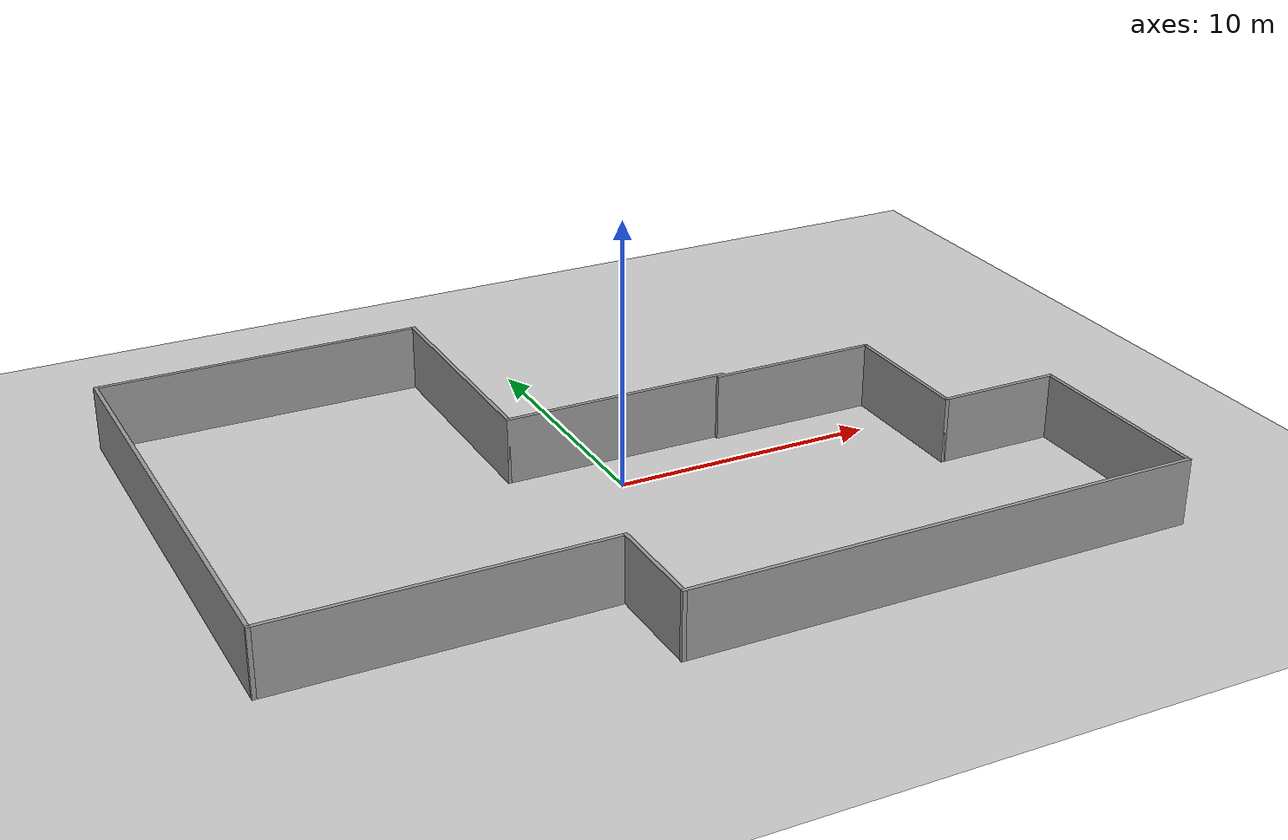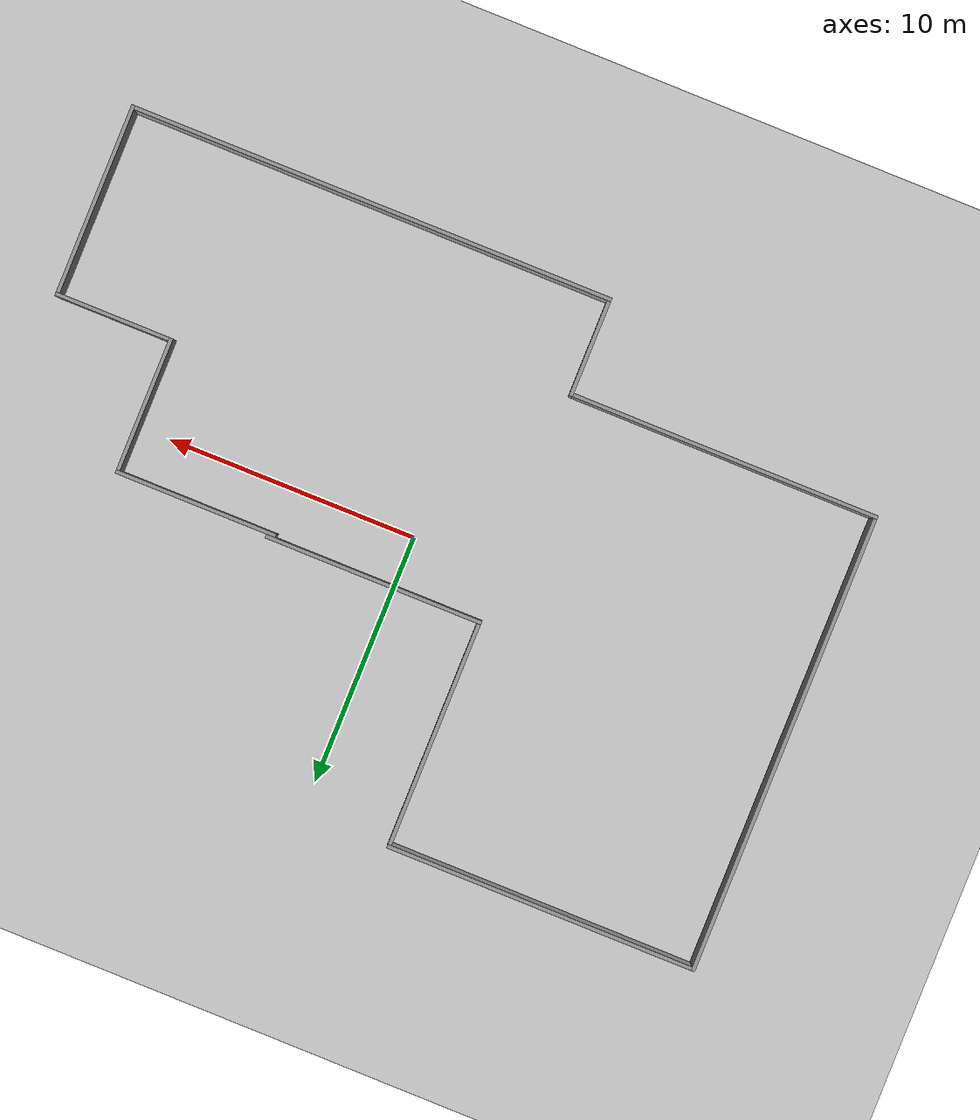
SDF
<?xml version="1.0" encoding="UTF-8"?>
<sdf version="1.4">
  <world name="default">
    <!-- *********************INITIAL POSE OF THE CAMERA***************************** -->
		<gui>
      <camera name="main_cam">
        <pose>1.15 -26 21 0 0.8 1.57</pose>
      </camera>
    </gui>

    <!-- *********************GROUND AND SUN***************************** -->
    <include>
      <uri>model://ground_plane</uri>
    </include>

    <include>
      <uri>model://sun</uri>
    </include>

    <!-- **********************WALLS**************************** -->
    <include>
      <uri>model://B3_env</uri>
      <name>walls</name>
      <pose>0 0 0 0 0 0</pose>
    </include>
  </world>
</sdf>

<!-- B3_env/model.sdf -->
<sdf version='1.6'>
  <model name='B3_env'>
    <pose frame=''>-7.64 -3.1 0 0 -0 0</pose>
    <link name='Wall_0'>
      <collision name='Wall_0_Collision'>
        <geometry>
          <box>
            <size>6.5 0.15 2.5</size>
          </box>
        </geometry>
        <pose frame=''>0 0 1.25 0 -0 0</pose>
      </collision>
      <visual name='Wall_0_Visual'>
        <pose frame=''>0 0 1.25 0 -0 0</pose>
        <geometry>
          <box>
            <size>6.5 0.15 2.5</size>
          </box>
        </geometry>
        <material>
          <script>
            <uri>file://media/materials/scripts/gazebo.material</uri>
            <name>Gazebo/Grey</name>
          </script>
          <ambient>1 1 1 1</ambient>
        </material>
        <meta>
          <layer>0</layer>
        </meta>
      </visual>
      <pose frame=''>8.075 1.85 0 0 -0 0</pose>
    </link>
    <link name='Wall_1'>
      <collision name='Wall_1_Collision'>
        <geometry>
          <box>
            <size>5.5 0.15 2.5</size>
          </box>
        </geometry>
        <pose frame=''>0 0 1.25 0 -0 0</pose>
      </collision>
      <visual name='Wall_1_Visual'>
        <pose frame=''>0 0 1.25 0 -0 0</pose>
        <geometry>
          <box>
            <size>5.5 0.15 2.5</size>
          </box>
        </geometry>
        <material>
          <script>
            <uri>file://media/materials/scripts/gazebo.material</uri>
            <name>Gazebo/Grey</name>
          </script>
          <ambient>1 1 1 1</ambient>
        </material>
        <meta>
          <layer>0</layer>
        </meta>
      </visual>
      <pose frame=''>11.25 -0.825001 0 0 -0 -1.5708</pose>
    </link>
    <link name='Wall_10'>
      <collision name='Wall_10_Collision'>
        <geometry>
          <box>
            <size>8.75 0.15 2.5</size>
          </box>
        </geometry>
        <pose frame=''>0 0 1.25 0 -0 0</pose>
      </collision>
      <visual name='Wall_10_Visual'>
        <pose frame=''>0 0 1.25 0 -0 0</pose>
        <geometry>
          <box>
            <size>8.75 0.15 2.5</size>
          </box>
        </geometry>
        <material>
          <script>
            <uri>file://media/materials/scripts/gazebo.material</uri>
            <name>Gazebo/Grey</name>
          </script>
          <ambient>1 1 1 1</ambient>
        </material>
        <meta>
          <layer>0</layer>
        </meta>
      </visual>
      <pose frame=''>0.8 2 0 0 -0 0</pose>
    </link>
    <link name='Wall_2'>
      <collision name='Wall_2_Collision'>
        <geometry>
          <box>
            <size>4.75 0.15 2.5</size>
          </box>
        </geometry>
        <pose frame=''>0 0 1.25 0 -0 0</pose>
      </collision>
      <visual name='Wall_2_Visual'>
        <pose frame=''>0 0 1.25 0 -0 0</pose>
        <geometry>
          <box>
            <size>4.75 0.15 2.5</size>
          </box>
        </geometry>
        <material>
          <script>
            <uri>file://media/materials/scripts/gazebo.material</uri>
            <name>Gazebo/Grey</name>
          </script>
          <ambient>1 1 1 1</ambient>
        </material>
        <meta>
          <layer>0</layer>
        </meta>
      </visual>
      <pose frame=''>13.55 -3.5 0 0 -0 0</pose>
    </link>
    <link name='Wall_3'>
      <collision name='Wall_3_Collision'>
        <geometry>
          <box>
            <size>7.75 0.15 2.5</size>
          </box>
        </geometry>
        <pose frame=''>0 0 1.25 0 -0 0</pose>
      </collision>
      <visual name='Wall_3_Visual'>
        <pose frame=''>0 0 1.25 0 -0 0</pose>
        <geometry>
          <box>
            <size>7.75 0.15 2.5</size>
          </box>
        </geometry>
        <material>
          <script>
            <uri>file://media/materials/scripts/gazebo.material</uri>
            <name>Gazebo/Grey</name>
          </script>
          <ambient>1 1 1 1</ambient>
        </material>
        <meta>
          <layer>0</layer>
        </meta>
      </visual>
      <pose frame=''>15.85 -7.3 0 0 -0 -1.5708</pose>
    </link>
    <link name='Wall_4'>
      <collision name='Wall_4_Collision'>
        <geometry>
          <box>
            <size>19.5 0.15 2.5</size>
          </box>
        </geometry>
        <pose frame=''>0 0 1.25 0 -0 0</pose>
      </collision>
      <visual name='Wall_4_Visual'>
        <pose frame=''>0 0 1.25 0 -0 0</pose>
        <geometry>
          <box>
            <size>19.5 0.15 2.5</size>
          </box>
        </geometry>
        <material>
          <script>
            <uri>file://media/materials/scripts/gazebo.material</uri>
            <name>Gazebo/Grey</name>
          </script>
          <ambient>1 1 1 1</ambient>
        </material>
        <meta>
          <layer>0</layer>
        </meta>
      </visual>
      <pose frame=''>6.175 -11.1 0 0 -0 3.14159</pose>
    </link>
    <link name='Wall_5'>
      <collision name='Wall_5_Collision'>
        <geometry>
          <box>
            <size>4 0.15 2.5</size>
          </box>
        </geometry>
        <pose frame=''>0 0 1.25 0 -0 0</pose>
      </collision>
      <visual name='Wall_5_Visual'>
        <pose frame=''>0 0 1.25 0 -0 0</pose>
        <geometry>
          <box>
            <size>4 0.15 2.5</size>
          </box>
        </geometry>
        <material>
          <script>
            <uri>file://media/materials/scripts/gazebo.material</uri>
            <name>Gazebo/Grey</name>
          </script>
          <ambient>1 1 1 1</ambient>
        </material>
        <meta>
          <layer>0</layer>
        </meta>
      </visual>
      <pose frame=''>-3.5 -9.175 0 0 -0 1.5708</pose>
    </link>
    <link name='Wall_6'>
      <collision name='Wall_6_Collision'>
        <geometry>
          <box>
            <size>12.5 0.15 2.5</size>
          </box>
        </geometry>
        <pose frame=''>0 0 1.25 0 -0 0</pose>
      </collision>
      <visual name='Wall_6_Visual'>
        <pose frame=''>0 0 1.25 0 -0 0</pose>
        <geometry>
          <box>
            <size>12.5 0.15 2.5</size>
          </box>
        </geometry>
        <material>
          <script>
            <uri>file://media/materials/scripts/gazebo.material</uri>
            <name>Gazebo/Grey</name>
          </script>
          <ambient>1 1 1 1</ambient>
        </material>
        <meta>
          <layer>0</layer>
        </meta>
      </visual>
      <pose frame=''>-9.675 -7.25 0 0 -0 3.14159</pose>
    </link>
    <link name='Wall_7'>
      <collision name='Wall_7_Collision'>
        <geometry>
          <box>
            <size>18.5 0.15 2.5</size>
          </box>
        </geometry>
        <pose frame=''>0 0 1.25 0 -0 0</pose>
      </collision>
      <visual name='Wall_7_Visual'>
        <pose frame=''>0 0 1.25 0 -0 0</pose>
        <geometry>
          <box>
            <size>18.5 0.15 2.5</size>
          </box>
        </geometry>
        <material>
          <script>
            <uri>file://media/materials/scripts/gazebo.material</uri>
            <name>Gazebo/Grey</name>
          </script>
          <ambient>1 1 1 1</ambient>
        </material>
        <meta>
          <layer>0</layer>
        </meta>
      </visual>
      <pose frame=''>-15.85 1.925 0 0 -0 1.5708</pose>
    </link>
    <link name='Wall_8'>
      <collision name='Wall_8_Collision'>
        <geometry>
          <box>
            <size>12.5 0.15 2.5</size>
          </box>
        </geometry>
        <pose frame=''>0 0 1.25 0 -0 0</pose>
      </collision>
      <visual name='Wall_8_Visual'>
        <pose frame=''>0 0 1.25 0 -0 0</pose>
        <geometry>
          <box>
            <size>12.5 0.15 2.5</size>
          </box>
        </geometry>
        <material>
          <script>
            <uri>file://media/materials/scripts/gazebo.material</uri>
            <name>Gazebo/Grey</name>
          </script>
          <ambient>1 1 1 1</ambient>
        </material>
        <meta>
          <layer>0</layer>
        </meta>
      </visual>
      <pose frame=''>-9.675 11.1 0 0 -0 0</pose>
    </link>
    <link name='Wall_9'>
      <collision name='Wall_9_Collision'>
        <geometry>
          <box>
            <size>9.25 0.15 2.5</size>
          </box>
        </geometry>
        <pose frame=''>0 0 1.25 0 -0 0</pose>
      </collision>
      <visual name='Wall_9_Visual'>
        <pose frame=''>0 0 1.25 0 -0 0</pose>
        <geometry>
          <box>
            <size>9.25 0.15 2.5</size>
          </box>
        </geometry>
        <material>
          <script>
            <uri>file://media/materials/scripts/gazebo.material</uri>
            <name>Gazebo/Grey</name>
          </script>
          <ambient>1 1 1 1</ambient>
        </material>
        <meta>
          <layer>0</layer>
        </meta>
      </visual>
      <pose frame=''>-3.5 6.55 0 0 -0 -1.5708</pose>
    </link>
    <static>1</static>
  </model>
</sdf>
